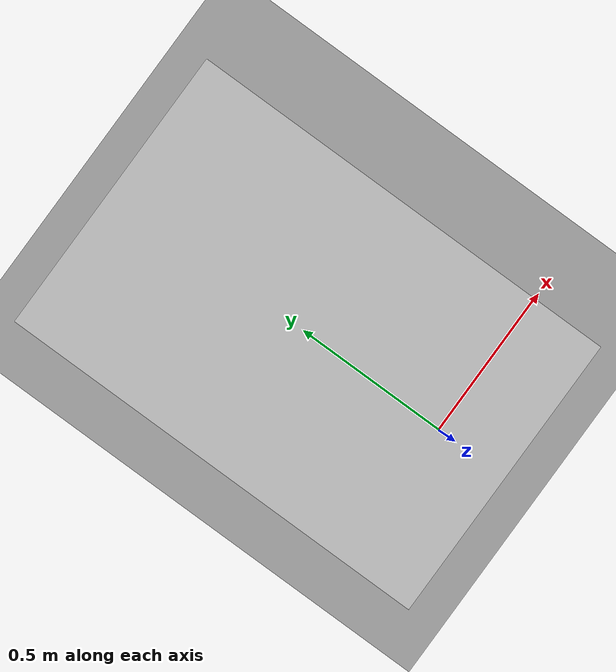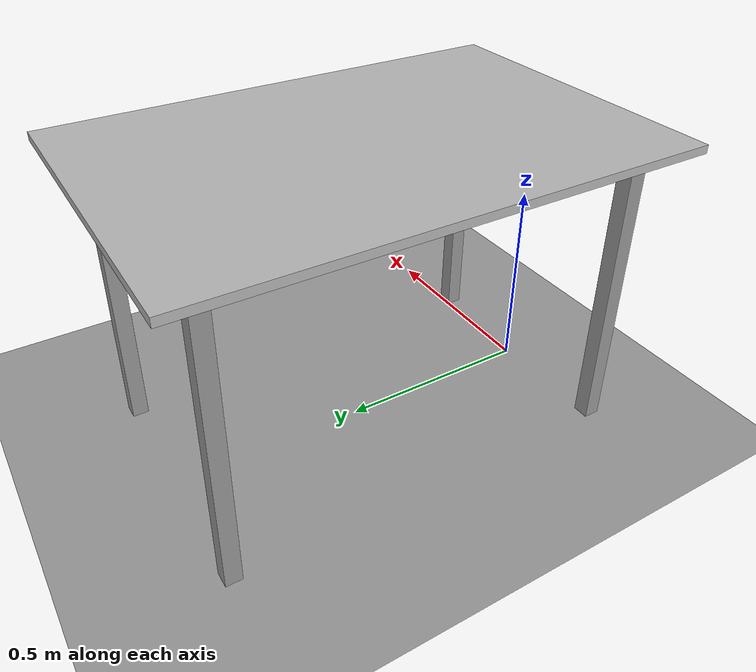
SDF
<?xml version="1.0" ?>

<sdf version="1.6">

  <world name="ur3e">

    <gui>
      <camera name='user_camera'>
        <pose frame=''>0.846027 1.34839 1.39925 0 0.314 -2.35919</pose>
        <view_controller>orbit</view_controller>
        <projection_type>perspective</projection_type>
      </camera>
    </gui>

    <gravity>0 0 -9.81</gravity>

    <physics name="default_physics" default="0" type="ode">
      <max_step_size>0.001</max_step_size>
      <real_time_factor>1</real_time_factor>
      <real_time_update_rate>1000</real_time_update_rate>
    </physics>

    <!-- A gazebo links attacher -->
    <plugin name="ros_link_attacher_plugin" filename="libgazebo_ros_link_attacher.so"/>

    <scene>
      <ambient>0.6 0.6 0.6 1</ambient>
      <background>1.0 1.0 1.0 1</background>
      <shadows>1</shadows>
    </scene>

    <!-- Light Source -->
    <include>
      <uri>model://sun</uri>
    </include>

    <!-- A ground plane -->
    <include>
      <uri>model://floor</uri>
      <pose>0 0 0 0 0 0</pose>
    </include>

    <!-- A gazebo links attacher -->

    <!-- The robot base -->
    <model name="ur3e_base">
      <include>
        <uri>model://ur3e_base</uri>
        <pose>0.0 0.48 0 0 0 0</pose>
      </include>
    </model>

   </world>

</sdf>

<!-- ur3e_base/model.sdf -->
<sdf version="1.6">
  <model name="ur_base">
    <static>true</static>

    <link name="top_plate">
      <pose>0 0 0.75 0 0 0</pose>
      <collision name="top_plate_collision">
        <geometry>
          <box>
            <size>0.8 1.2 0.02</size>
          </box>
        </geometry>
        <surface>
          <contact>
            <collide_bitmask>0x01</collide_bitmask>
          </contact>
        </surface>
      </collision>
      <visual name="top_plate_visual">
        <geometry>
          <box>
            <size>0.8 1.2 0.02</size>
          </box>
        </geometry>
        <material>
          <script>
            <uri>file://ur3e_base/materials/scripts/repeated.material</uri>
            <name>RepeatedTexture</name>
          </script>
        </material>
      </visual>
    </link>
    <link name="leg1">
      <pose>0.3 0.5 0.375 0 0 0</pose>
      <visual name="leg1_visual">
        <geometry>
          <box>
            <size>0.04 0.04 0.75</size>
          </box>
        </geometry>
        <material>
          <script>
            <uri>file://media/materials/scripts/gazebo.material</uri>
            <name>Gazebo/Grey</name>
          </script>
        </material>
      </visual>
    </link>
    <link name="leg2">
      <pose>-0.3 0.5 0.375 0 0 0</pose>
      <visual name="leg2_visual">
        <geometry>
          <box>
            <size>0.04 0.04 0.75</size>
          </box>
        </geometry>
        <material>
          <script>
            <uri>file://media/materials/scripts/gazebo.material</uri>
            <name>Gazebo/Grey</name>
          </script>
        </material>
      </visual>
    </link>
    <link name="leg3">
      <pose>0.3 -0.5 0.375 0 0 0</pose>
      <visual name="leg3_visual">
        <geometry>
          <box>
            <size>0.04 0.04 0.75</size>
          </box>
        </geometry>
        <material>
          <script>
            <uri>file://media/materials/scripts/gazebo.material</uri>
            <name>Gazebo/Grey</name>
          </script>
        </material>
      </visual>
    </link>
    <link name="leg4">
      <pose>-0.3 -0.5 0.375 0 0 0</pose>
      <visual name="leg4_visual">
        <geometry>
          <box>
            <size>0.04 0.04 0.75</size>
          </box>
        </geometry>
        <material>
          <script>
            <uri>file://media/materials/scripts/gazebo.material</uri>
            <name>Gazebo/Grey</name>
          </script>
        </material>
      </visual>
    </link>
  </model>
</sdf>

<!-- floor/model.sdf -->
<sdf version="1.5">
  <model name="floor">
    <static>true</static>
    <link name="link">
      <collision name="collision">
        <geometry>
          <plane>
            <normal>0 0 1</normal>
            <size>5 5</size>
          </plane>
        </geometry>
        <surface>
          <contact>
             <collide_bitmask>0xffff</collide_bitmask>
          </contact>
          <friction>
            <ode>
              <mu>100</mu>
              <mu2>50</mu2>
            </ode>
          </friction>
        </surface>
      </collision>
      <visual name="visual">
        <cast_shadows>false</cast_shadows>
        <geometry>
          <plane>
            <normal>0 0 1</normal>
            <size>5 5</size>
          </plane>
        </geometry>
        <material>
          <script>
            <uri>file://media/materials/scripts/gazebo.material</uri>
            <name>Gazebo/Grey</name>
          </script>
        </material>
      </visual>
    </link>
  </model>
</sdf>
